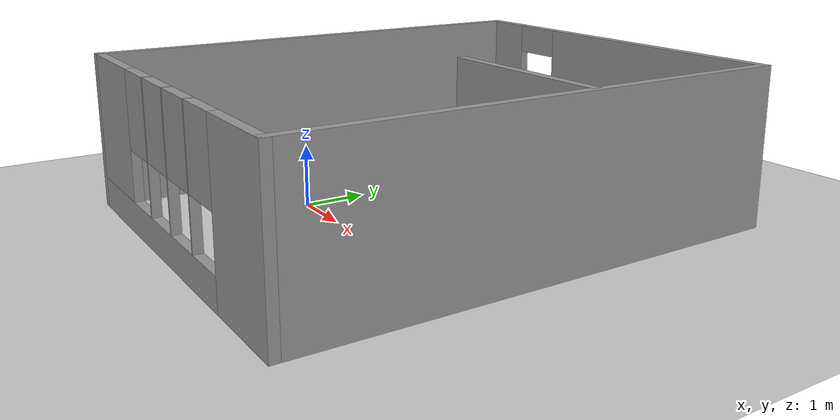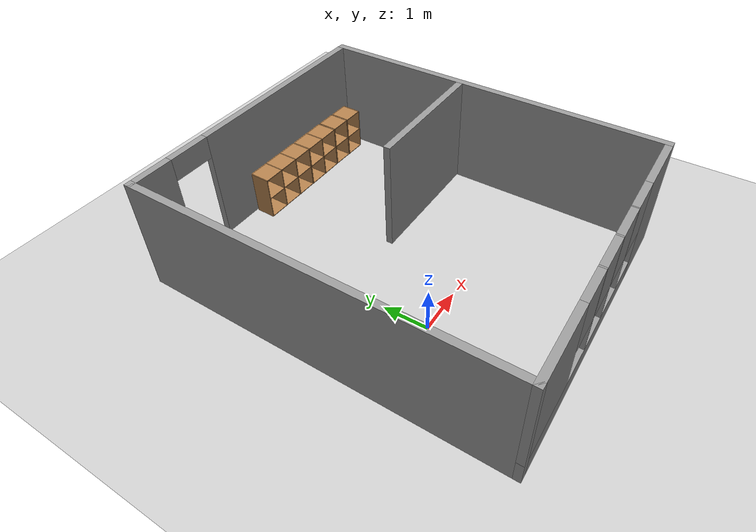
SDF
<sdf version="1.6">
 <world name="default">
  <light name="sun" type="directional">
   <pose>0 0 10 0 -0 0</pose>
   <diffuse>0.8 0.8 0.8 1</diffuse>
   <specular>0.2 0.2 0.2 1</specular>
   <attenuation>
    <range>1000</range>
    <constant>0.9</constant>
    <linear>0.01</linear>
    <quadratic>0.001</quadratic>
   </attenuation>
   <direction>-0.5 0.1 -0.9</direction>
  </light>
  <model name="ground_plane">
   <static>1</static>
   <link name="link">
    <collision name="collision">
     <geometry><plane><normal>0 0 1</normal><size>100 100</size></plane></geometry>
     <surface>
      <contact><collide_bitmask>65535</collide_bitmask></contact>
      <friction><ode><mu>100</mu><mu2>50</mu2></ode></friction>
     </surface>
    </collision>
    <visual name="visual">
     <cast_shadows>0</cast_shadows>
     <geometry><plane><normal>0 0 1</normal><size>100 100</size></plane></geometry>
     <material>
      <script><uri>file://media/materials/scripts/gazebo.material</uri><name>Gazebo/Grey</name></script>
     </material>
    </visual>
   </link>
  </model>
  <gravity>0 0 -9.8</gravity>
  <magnetic_field>6e-06 2.3e-05 -4.2e-05</magnetic_field>
  <atmosphere type="adiabatic"/>
  <physics name="default_physics" default="0" type="ode">
   <max_step_size>0.001</max_step_size>
   <real_time_factor>1</real_time_factor>
   <real_time_update_rate>1000</real_time_update_rate>
  </physics>
  <scene><ambient>0.4 0.4 0.4 1</ambient><background>0.7 0.7 0.7 1</background><shadows>1</shadows></scene>
  <audio><device>default</device></audio>
  <spherical_coordinates>
   <surface_model>EARTH_WGS84</surface_model>
   <latitude_deg>0</latitude_deg>
   <longitude_deg>0</longitude_deg>
   <elevation>0</elevation>
   <heading_deg>0</heading_deg>
  </spherical_coordinates>
  <model name="lab_simple">
   <pose>1.42168 1.25059 0 0 -0 0</pose>
   <link name="Wall_0">
    <pose>-0 -3.925 0 0 -0 3.14159</pose>
    <visual name="Wall_0_Visual_0">
     <pose>-2.5075 0 1.25 0 -0 0</pose>
     <geometry><box><size>1.485 0.15 2.5</size></box></geometry>
     <material>
      <script><uri>file://media/materials/scripts/gazebo.material</uri><name>Gazebo/Grey</name></script>
      <ambient>1 1 1 1</ambient>
     </material>
     <meta><layer>0</layer></meta>
    </visual>
    <collision name="Wall_0_Collision_0">
     <geometry><box><size>1.485 0.15 2.5</size></box></geometry>
     <pose>-2.5075 0 1.25 0 -0 0</pose>
    </collision>
    <visual name="Wall_0_Visual_1">
     <pose>0.7425 0 0.25 0 -0 0</pose>
     <geometry><box><size>5.015 0.15 0.5</size></box></geometry>
     <material>
      <script><uri>file://media/materials/scripts/gazebo.material</uri><name>Gazebo/Grey</name></script>
      <ambient>1 1 1 1</ambient>
     </material>
     <meta><layer>0</layer></meta>
    </visual>
    <collision name="Wall_0_Collision_1">
     <geometry><box><size>5.015 0.15 0.5</size></box></geometry>
     <pose>0.7425 0 0.25 0 -0 0</pose>
    </collision>
    <visual name="Wall_0_Visual_2">
     <pose>-0.95 0 1.5 0 -0 0</pose>
     <geometry><box><size>0.03 0.15 2</size></box></geometry>
     <material>
      <script><uri>file://media/materials/scripts/gazebo.material</uri><name>Gazebo/Grey</name></script>
      <ambient>1 1 1 1</ambient>
     </material>
     <meta><layer>0</layer></meta>
    </visual>
    <collision name="Wall_0_Collision_2">
     <geometry><box><size>0.03 0.15 2</size></box></geometry>
     <pose>-0.95 0 1.5 0 -0 0</pose>
    </collision>
    <visual name="Wall_0_Visual_3">
     <pose>-0.115 0 1.5 0 -0 0</pose>
     <geometry><box><size>0.04 0.15 2</size></box></geometry>
     <material>
      <script><uri>file://media/materials/scripts/gazebo.material</uri><name>Gazebo/Grey</name></script>
      <ambient>1 1 1 1</ambient>
     </material>
     <meta><layer>0</layer></meta>
    </visual>
    <collision name="Wall_0_Collision_3">
     <geometry><box><size>0.04 0.15 2</size></box></geometry>
     <pose>-0.115 0 1.5 0 -0 0</pose>
    </collision>
    <visual name="Wall_0_Visual_4">
     <pose>0.725 0 1.5 0 -0 0</pose>
     <geometry><box><size>0.04 0.15 2</size></box></geometry>
     <material>
      <script><uri>file://media/materials/scripts/gazebo.material</uri><name>Gazebo/Grey</name></script>
      <ambient>1 1 1 1</ambient>
     </material>
     <meta><layer>0</layer></meta>
    </visual>
    <collision name="Wall_0_Collision_4">
     <geometry><box><size>0.04 0.15 2</size></box></geometry>
     <pose>0.725 0 1.5 0 -0 0</pose>
    </collision>
    <visual name="Wall_0_Visual_5">
     <pose>2.3975 0 1.5 0 -0 0</pose>
     <geometry><box><size>1.705 0.15 2</size></box></geometry>
     <material>
      <script><uri>file://media/materials/scripts/gazebo.material</uri><name>Gazebo/Grey</name></script>
      <ambient>1 1 1 1</ambient>
     </material>
     <meta><layer>0</layer></meta>
    </visual>
    <collision name="Wall_0_Collision_5">
     <geometry><box><size>1.705 0.15 2</size></box></geometry>
     <pose>2.3975 0 1.5 0 -0 0</pose>
    </collision>
    <visual name="Wall_0_Visual_6">
     <pose>-1.365 0 1.9 0 -0 0</pose>
     <geometry><box><size>0.8 0.15 1.2</size></box></geometry>
     <material>
      <script><uri>file://media/materials/scripts/gazebo.material</uri><name>Gazebo/Grey</name></script>
      <ambient>1 1 1 1</ambient>
     </material>
     <meta><layer>0</layer></meta>
    </visual>
    <collision name="Wall_0_Collision_6">
     <geometry><box><size>0.8 0.15 1.2</size></box></geometry>
     <pose>-1.365 0 1.9 0 -0 0</pose>
    </collision>
    <visual name="Wall_0_Visual_7">
     <pose>-0.535 0 1.9 0 -0 0</pose>
     <geometry><box><size>0.8 0.15 1.2</size></box></geometry>
     <material>
      <script><uri>file://media/materials/scripts/gazebo.material</uri><name>Gazebo/Grey</name></script>
      <ambient>1 1 1 1</ambient>
     </material>
     <meta><layer>0</layer></meta>
    </visual>
    <collision name="Wall_0_Collision_7">
     <geometry><box><size>0.8 0.15 1.2</size></box></geometry>
     <pose>-0.535 0 1.9 0 -0 0</pose>
    </collision>
    <visual name="Wall_0_Visual_8">
     <pose>0.305 0 1.9 0 -0 0</pose>
     <geometry><box><size>0.8 0.15 1.2</size></box></geometry>
     <material>
      <script><uri>file://media/materials/scripts/gazebo.material</uri><name>Gazebo/Grey</name></script>
      <ambient>1 1 1 1</ambient>
     </material>
     <meta><layer>0</layer></meta>
    </visual>
    <collision name="Wall_0_Collision_8">
     <geometry><box><size>0.8 0.15 1.2</size></box></geometry>
     <pose>0.305 0 1.9 0 -0 0</pose>
    </collision>
    <visual name="Wall_0_Visual_9">
     <pose>1.145 0 1.9 0 -0 0</pose>
     <geometry><box><size>0.8 0.15 1.2</size></box></geometry>
     <material>
      <script><uri>file://media/materials/scripts/gazebo.material</uri><name>Gazebo/Grey</name></script>
      <ambient>1 1 1 1</ambient>
     </material>
     <meta><layer>0</layer></meta>
    </visual>
    <collision name="Wall_0_Collision_9">
     <geometry><box><size>0.8 0.15 1.2</size></box></geometry>
     <pose>1.145 0 1.9 0 -0 0</pose>
    </collision>
   </link>
   <link name="Wall_1">
    <collision name="Wall_1_Collision">
     <geometry><box><size>8 0.15 2.5</size></box></geometry>
     <pose>0 0 1.25 0 -0 0</pose>
    </collision>
    <visual name="Wall_1_Visual">
     <pose>0 0 1.25 0 -0 0</pose>
     <geometry><box><size>8 0.15 2.5</size></box></geometry>
     <material>
      <script><uri>file://media/materials/scripts/gazebo.material</uri><name>Gazebo/Grey</name></script>
      <ambient>1 1 1 1</ambient>
     </material>
     <meta><layer>0</layer></meta>
    </visual>
    <pose>-3.175 0 0 0 -0 1.5708</pose>
   </link>
   <link name="Wall_2">
    <pose>-0 3.925 0 0 -0 0</pose>
    <visual name="Wall_2_Visual_0">
     <pose>-2.7675 0 1.25 0 -0 0</pose>
     <geometry><box><size>0.965 0.15 2.5</size></box></geometry>
     <material>
      <script><uri>file://media/materials/scripts/gazebo.material</uri><name>Gazebo/Grey</name></script>
      <ambient>1 1 1 1</ambient>
     </material>
     <meta><layer>0</layer></meta>
    </visual>
    <collision name="Wall_2_Collision_0">
     <geometry><box><size>0.965 0.15 2.5</size></box></geometry>
     <pose>-2.7675 0 1.25 0 -0 0</pose>
    </collision>
    <visual name="Wall_2_Visual_1">
     <pose>0.9325 0 1.25 0 -0 0</pose>
     <geometry><box><size>4.635 0.15 2.5</size></box></geometry>
     <material>
      <script><uri>file://media/materials/scripts/gazebo.material</uri><name>Gazebo/Grey</name></script>
      <ambient>1 1 1 1</ambient>
     </material>
     <meta><layer>0</layer></meta>
    </visual>
    <collision name="Wall_2_Collision_1">
     <geometry><box><size>4.635 0.15 2.5</size></box></geometry>
     <pose>0.9325 0 1.25 0 -0 0</pose>
    </collision>
    <visual name="Wall_2_Visual_2">
     <pose>-1.835 0 2.25 0 -0 0</pose>
     <geometry><box><size>0.9 0.15 0.5</size></box></geometry>
     <material>
      <script><uri>file://media/materials/scripts/gazebo.material</uri><name>Gazebo/Grey</name></script>
      <ambient>1 1 1 1</ambient>
     </material>
     <meta><layer>0</layer></meta>
    </visual>
    <collision name="Wall_2_Collision_2">
     <geometry><box><size>0.9 0.15 0.5</size></box></geometry>
     <pose>-1.835 0 2.25 0 -0 0</pose>
    </collision>
   </link>
   <link name="Wall_3">
    <collision name="Wall_3_Collision">
     <geometry><box><size>8 0.15 2.5</size></box></geometry>
     <pose>0 0 1.25 0 -0 0</pose>
    </collision>
    <visual name="Wall_3_Visual">
     <pose>0 0 1.25 0 -0 0</pose>
     <geometry><box><size>8 0.15 2.5</size></box></geometry>
     <material>
      <script><uri>file://media/materials/scripts/gazebo.material</uri><name>Gazebo/Grey</name></script>
      <ambient>1 1 1 1</ambient>
     </material>
     <meta><layer>0</layer></meta>
    </visual>
    <pose>3.175 0 0 0 -0 -1.5708</pose>
   </link>
   <link name="Wall_5">
    <collision name="Wall_5_Collision">
     <geometry><box><size>3 0.15 2.5</size></box></geometry>
     <pose>0 0 1.25 0 -0 0</pose>
    </collision>
    <visual name="Wall_5_Visual">
     <pose>0 0 1.25 0 -0 0</pose>
     <geometry><box><size>3 0.15 2.5</size></box></geometry>
     <material>
      <script><uri>file://media/materials/scripts/gazebo.material</uri><name>Gazebo/Grey</name></script>
      <ambient>1 1 1 1</ambient>
     </material>
     <meta><layer>0</layer></meta>
    </visual>
    <pose>1.67 0.655 0 0 -0 0</pose>
   </link>
   <static>1</static>
  </model>
  <model name="cabinet">
   <static>1</static>
   <link name="cabinet_bottom_plate">
    <inertial>
     <pose>0 0 -1 0 -0 0</pose>
     <inertia><ixx>2.05</ixx><ixy>0</ixy><ixz>0</ixz><iyy>2.05</iyy><iyz>0</iyz><izz>2.05</izz></inertia>
     <mass>25</mass>
    </inertial>
    <collision name="cabinet_bottom_plate_geom">
     <pose>0 0 0.01 0 -0 0</pose>
     <geometry><box><size>0.45 0.45 0.02</size></box></geometry>
    </collision>
    <visual name="cabinet_bottom_plate_geom_visual">
     <pose>0 0 0.01 0 -0 0</pose>
     <geometry><box><size>0.45 0.45 0.02</size></box></geometry>
     <material>
      <script><uri>file://media/materials/scripts/gazebo.material</uri><name>Gazebo/Wood</name></script>
     </material>
    </visual>
    <collision name="cabinet_bottom_plate_geom_cabinet_back_plate">
     <pose>0.235 0 0.51 0 -0 0</pose>
     <geometry><box><size>0.02 0.45 1.02</size></box></geometry>
    </collision>
    <visual name="cabinet_bottom_plate_geom_cabinet_back_plate_visual">
     <pose>0.235 0 0.51 0 -0 0</pose>
     <geometry><box><size>0.02 0.45 1.02</size></box></geometry>
     <material>
      <script><uri>file://media/materials/scripts/gazebo.material</uri><name>Gazebo/Wood</name></script>
     </material>
    </visual>
    <collision name="cabinet_bottom_plate_geom_cabinet_left_plate">
     <pose>0 0.235 0.51 0 -0 0</pose>
     <geometry><box><size>0.45 0.02 1.02</size></box></geometry>
    </collision>
    <visual name="cabinet_bottom_plate_geom_cabinet_left_plate_visual">
     <pose>0 0.235 0.51 0 -0 0</pose>
     <geometry><box><size>0.45 0.02 1.02</size></box></geometry>
     <material>
      <script><uri>file://media/materials/scripts/gazebo.material</uri><name>Gazebo/Wood</name></script>
     </material>
    </visual>
    <collision name="cabinet_bottom_plate_geom_cabinet_middle_plate">
     <pose>0 0 0.51 0 -0 0</pose>
     <geometry><box><size>0.45 0.45 0.02</size></box></geometry>
    </collision>
    <visual name="cabinet_bottom_plate_geom_cabinet_middle_plate_visual">
     <pose>0 0 0.51 0 -0 0</pose>
     <geometry><box><size>0.45 0.45 0.02</size></box></geometry>
     <material>
      <script><uri>file://media/materials/scripts/gazebo.material</uri><name>Gazebo/Wood</name></script>
     </material>
    </visual>
    <collision name="cabinet_bottom_plate_geom_cabinet_right_plate">
     <pose>0 -0.235 0.51 0 -0 0</pose>
     <geometry><box><size>0.45 0.02 1.02</size></box></geometry>
    </collision>
    <visual name="cabinet_bottom_plate_geom_cabinet_right_plate_visual">
     <pose>0 -0.235 0.51 0 -0 0</pose>
     <geometry><box><size>0.45 0.02 1.02</size></box></geometry>
     <material>
      <script><uri>file://media/materials/scripts/gazebo.material</uri><name>Gazebo/Wood</name></script>
     </material>
    </visual>
    <collision name="cabinet_bottom_plate_geom_cabinet_top_plate">
     <pose>0 0 1.01 0 -0 0</pose>
     <geometry><box><size>0.45 0.45 0.02</size></box></geometry>
    </collision>
    <visual name="cabinet_bottom_plate_geom_cabinet_top_plate_visual">
     <pose>0 0 1.01 0 -0 0</pose>
     <geometry><box><size>0.45 0.45 0.02</size></box></geometry>
     <material>
      <script><uri>file://media/materials/scripts/gazebo.material</uri><name>Gazebo/Wood</name></script>
     </material>
    </visual>
   </link>
   <pose>1.16483 4.83629 0 0 -0 1.55424</pose>
  </model>
  <model name="cabinet_clone">
   <static>1</static>
   <link name="cabinet_bottom_plate">
    <inertial>
     <pose>0 0 -1 0 -0 0</pose>
     <inertia><ixx>2.05</ixx><ixy>0</ixy><ixz>0</ixz><iyy>2.05</iyy><iyz>0</iyz><izz>2.05</izz></inertia>
     <mass>25</mass>
    </inertial>
    <collision name="cabinet_bottom_plate_geom">
     <pose>0 0 0.01 0 -0 0</pose>
     <geometry><box><size>0.45 0.45 0.02</size></box></geometry>
    </collision>
    <visual name="cabinet_bottom_plate_geom_visual">
     <pose>0 0 0.01 0 -0 0</pose>
     <geometry><box><size>0.45 0.45 0.02</size></box></geometry>
     <material>
      <script><uri>file://media/materials/scripts/gazebo.material</uri><name>Gazebo/Wood</name></script>
     </material>
    </visual>
    <collision name="cabinet_bottom_plate_geom_cabinet_back_plate">
     <pose>0.235 0 0.51 0 -0 0</pose>
     <geometry><box><size>0.02 0.45 1.02</size></box></geometry>
    </collision>
    <visual name="cabinet_bottom_plate_geom_cabinet_back_plate_visual">
     <pose>0.235 0 0.51 0 -0 0</pose>
     <geometry><box><size>0.02 0.45 1.02</size></box></geometry>
     <material>
      <script><uri>file://media/materials/scripts/gazebo.material</uri><name>Gazebo/Wood</name></script>
     </material>
    </visual>
    <collision name="cabinet_bottom_plate_geom_cabinet_left_plate">
     <pose>0 0.235 0.51 0 -0 0</pose>
     <geometry><box><size>0.45 0.02 1.02</size></box></geometry>
    </collision>
    <visual name="cabinet_bottom_plate_geom_cabinet_left_plate_visual">
     <pose>0 0.235 0.51 0 -0 0</pose>
     <geometry><box><size>0.45 0.02 1.02</size></box></geometry>
     <material>
      <script><uri>file://media/materials/scripts/gazebo.material</uri><name>Gazebo/Wood</name></script>
     </material>
    </visual>
    <collision name="cabinet_bottom_plate_geom_cabinet_middle_plate">
     <pose>0 0 0.51 0 -0 0</pose>
     <geometry><box><size>0.45 0.45 0.02</size></box></geometry>
    </collision>
    <visual name="cabinet_bottom_plate_geom_cabinet_middle_plate_visual">
     <pose>0 0 0.51 0 -0 0</pose>
     <geometry><box><size>0.45 0.45 0.02</size></box></geometry>
     <material>
      <script><uri>file://media/materials/scripts/gazebo.material</uri><name>Gazebo/Wood</name></script>
     </material>
    </visual>
    <collision name="cabinet_bottom_plate_geom_cabinet_right_plate">
     <pose>0 -0.235 0.51 0 -0 0</pose>
     <geometry><box><size>0.45 0.02 1.02</size></box></geometry>
    </collision>
    <visual name="cabinet_bottom_plate_geom_cabinet_right_plate_visual">
     <pose>0 -0.235 0.51 0 -0 0</pose>
     <geometry><box><size>0.45 0.02 1.02</size></box></geometry>
     <material>
      <script><uri>file://media/materials/scripts/gazebo.material</uri><name>Gazebo/Wood</name></script>
     </material>
    </visual>
    <collision name="cabinet_bottom_plate_geom_cabinet_top_plate">
     <pose>0 0 1.01 0 -0 0</pose>
     <geometry><box><size>0.45 0.45 0.02</size></box></geometry>
    </collision>
    <visual name="cabinet_bottom_plate_geom_cabinet_top_plate_visual">
     <pose>0 0 1.01 0 -0 0</pose>
     <geometry><box><size>0.45 0.45 0.02</size></box></geometry>
     <material>
      <script><uri>file://media/materials/scripts/gazebo.material</uri><name>Gazebo/Wood</name></script>
     </material>
    </visual>
   </link>
   <pose>1.63678 4.83291 0 0 -0 1.55919</pose>
  </model>
  <model name="cabinet_clone_0">
   <static>1</static>
   <link name="cabinet_bottom_plate">
    <inertial>
     <pose>0 0 -1 0 -0 0</pose>
     <inertia><ixx>2.05</ixx><ixy>0</ixy><ixz>0</ixz><iyy>2.05</iyy><iyz>0</iyz><izz>2.05</izz></inertia>
     <mass>25</mass>
    </inertial>
    <collision name="cabinet_bottom_plate_geom">
     <pose>0 0 0.01 0 -0 0</pose>
     <geometry><box><size>0.45 0.45 0.02</size></box></geometry>
    </collision>
    <visual name="cabinet_bottom_plate_geom_visual">
     <pose>0 0 0.01 0 -0 0</pose>
     <geometry><box><size>0.45 0.45 0.02</size></box></geometry>
     <material>
      <script><uri>file://media/materials/scripts/gazebo.material</uri><name>Gazebo/Wood</name></script>
     </material>
    </visual>
    <collision name="cabinet_bottom_plate_geom_cabinet_back_plate">
     <pose>0.235 0 0.51 0 -0 0</pose>
     <geometry><box><size>0.02 0.45 1.02</size></box></geometry>
    </collision>
    <visual name="cabinet_bottom_plate_geom_cabinet_back_plate_visual">
     <pose>0.235 0 0.51 0 -0 0</pose>
     <geometry><box><size>0.02 0.45 1.02</size></box></geometry>
     <material>
      <script><uri>file://media/materials/scripts/gazebo.material</uri><name>Gazebo/Wood</name></script>
     </material>
    </visual>
    <collision name="cabinet_bottom_plate_geom_cabinet_left_plate">
     <pose>0 0.235 0.51 0 -0 0</pose>
     <geometry><box><size>0.45 0.02 1.02</size></box></geometry>
    </collision>
    <visual name="cabinet_bottom_plate_geom_cabinet_left_plate_visual">
     <pose>0 0.235 0.51 0 -0 0</pose>
     <geometry><box><size>0.45 0.02 1.02</size></box></geometry>
     <material>
      <script><uri>file://media/materials/scripts/gazebo.material</uri><name>Gazebo/Wood</name></script>
     </material>
    </visual>
    <collision name="cabinet_bottom_plate_geom_cabinet_middle_plate">
     <pose>0 0 0.51 0 -0 0</pose>
     <geometry><box><size>0.45 0.45 0.02</size></box></geometry>
    </collision>
    <visual name="cabinet_bottom_plate_geom_cabinet_middle_plate_visual">
     <pose>0 0 0.51 0 -0 0</pose>
     <geometry><box><size>0.45 0.45 0.02</size></box></geometry>
     <material>
      <script><uri>file://media/materials/scripts/gazebo.material</uri><name>Gazebo/Wood</name></script>
     </material>
    </visual>
    <collision name="cabinet_bottom_plate_geom_cabinet_right_plate">
     <pose>0 -0.235 0.51 0 -0 0</pose>
     <geometry><box><size>0.45 0.02 1.02</size></box></geometry>
    </collision>
    <visual name="cabinet_bottom_plate_geom_cabinet_right_plate_visual">
     <pose>0 -0.235 0.51 0 -0 0</pose>
     <geometry><box><size>0.45 0.02 1.02</size></box></geometry>
     <material>
      <script><uri>file://media/materials/scripts/gazebo.material</uri><name>Gazebo/Wood</name></script>
     </material>
    </visual>
    <collision name="cabinet_bottom_plate_geom_cabinet_top_plate">
     <pose>0 0 1.01 0 -0 0</pose>
     <geometry><box><size>0.45 0.45 0.02</size></box></geometry>
    </collision>
    <visual name="cabinet_bottom_plate_geom_cabinet_top_plate_visual">
     <pose>0 0 1.01 0 -0 0</pose>
     <geometry><box><size>0.45 0.45 0.02</size></box></geometry>
     <material>
      <script><uri>file://media/materials/scripts/gazebo.material</uri><name>Gazebo/Wood</name></script>
     </material>
    </visual>
   </link>
   <pose>2.11128 4.82799 0 0 -0 1.57024</pose>
  </model>
  <model name="cabinet_clone_1">
   <static>1</static>
   <link name="cabinet_bottom_plate">
    <inertial>
     <pose>0 0 -1 0 -0 0</pose>
     <inertia><ixx>2.05</ixx><ixy>0</ixy><ixz>0</ixz><iyy>2.05</iyy><iyz>0</iyz><izz>2.05</izz></inertia>
     <mass>25</mass>
    </inertial>
    <collision name="cabinet_bottom_plate_geom">
     <pose>0 0 0.01 0 -0 0</pose>
     <geometry><box><size>0.45 0.45 0.02</size></box></geometry>
    </collision>
    <visual name="cabinet_bottom_plate_geom_visual">
     <pose>0 0 0.01 0 -0 0</pose>
     <geometry><box><size>0.45 0.45 0.02</size></box></geometry>
     <material>
      <script><uri>file://media/materials/scripts/gazebo.material</uri><name>Gazebo/Wood</name></script>
     </material>
    </visual>
    <collision name="cabinet_bottom_plate_geom_cabinet_back_plate">
     <pose>0.235 0 0.51 0 -0 0</pose>
     <geometry><box><size>0.02 0.45 1.02</size></box></geometry>
    </collision>
    <visual name="cabinet_bottom_plate_geom_cabinet_back_plate_visual">
     <pose>0.235 0 0.51 0 -0 0</pose>
     <geometry><box><size>0.02 0.45 1.02</size></box></geometry>
     <material>
      <script><uri>file://media/materials/scripts/gazebo.material</uri><name>Gazebo/Wood</name></script>
     </material>
    </visual>
    <collision name="cabinet_bottom_plate_geom_cabinet_left_plate">
     <pose>0 0.235 0.51 0 -0 0</pose>
     <geometry><box><size>0.45 0.02 1.02</size></box></geometry>
    </collision>
    <visual name="cabinet_bottom_plate_geom_cabinet_left_plate_visual">
     <pose>0 0.235 0.51 0 -0 0</pose>
     <geometry><box><size>0.45 0.02 1.02</size></box></geometry>
     <material>
      <script><uri>file://media/materials/scripts/gazebo.material</uri><name>Gazebo/Wood</name></script>
     </material>
    </visual>
    <collision name="cabinet_bottom_plate_geom_cabinet_middle_plate">
     <pose>0 0 0.51 0 -0 0</pose>
     <geometry><box><size>0.45 0.45 0.02</size></box></geometry>
    </collision>
    <visual name="cabinet_bottom_plate_geom_cabinet_middle_plate_visual">
     <pose>0 0 0.51 0 -0 0</pose>
     <geometry><box><size>0.45 0.45 0.02</size></box></geometry>
     <material>
      <script><uri>file://media/materials/scripts/gazebo.material</uri><name>Gazebo/Wood</name></script>
     </material>
    </visual>
    <collision name="cabinet_bottom_plate_geom_cabinet_right_plate">
     <pose>0 -0.235 0.51 0 -0 0</pose>
     <geometry><box><size>0.45 0.02 1.02</size></box></geometry>
    </collision>
    <visual name="cabinet_bottom_plate_geom_cabinet_right_plate_visual">
     <pose>0 -0.235 0.51 0 -0 0</pose>
     <geometry><box><size>0.45 0.02 1.02</size></box></geometry>
     <material>
      <script><uri>file://media/materials/scripts/gazebo.material</uri><name>Gazebo/Wood</name></script>
     </material>
    </visual>
    <collision name="cabinet_bottom_plate_geom_cabinet_top_plate">
     <pose>0 0 1.01 0 -0 0</pose>
     <geometry><box><size>0.45 0.45 0.02</size></box></geometry>
    </collision>
    <visual name="cabinet_bottom_plate_geom_cabinet_top_plate_visual">
     <pose>0 0 1.01 0 -0 0</pose>
     <geometry><box><size>0.45 0.45 0.02</size></box></geometry>
     <material>
      <script><uri>file://media/materials/scripts/gazebo.material</uri><name>Gazebo/Wood</name></script>
     </material>
    </visual>
   </link>
   <pose>2.59531 4.82299 0 0 -0 1.5717</pose>
  </model>
  <model name="cabinet_clone_2">
   <static>1</static>
   <link name="cabinet_bottom_plate">
    <inertial>
     <pose>0 0 -1 0 -0 0</pose>
     <inertia><ixx>2.05</ixx><ixy>0</ixy><ixz>0</ixz><iyy>2.05</iyy><iyz>0</iyz><izz>2.05</izz></inertia>
     <mass>25</mass>
    </inertial>
    <collision name="cabinet_bottom_plate_geom">
     <pose>0 0 0.01 0 -0 0</pose>
     <geometry><box><size>0.45 0.45 0.02</size></box></geometry>
    </collision>
    <visual name="cabinet_bottom_plate_geom_visual">
     <pose>0 0 0.01 0 -0 0</pose>
     <geometry><box><size>0.45 0.45 0.02</size></box></geometry>
     <material>
      <script><uri>file://media/materials/scripts/gazebo.material</uri><name>Gazebo/Wood</name></script>
     </material>
    </visual>
    <collision name="cabinet_bottom_plate_geom_cabinet_back_plate">
     <pose>0.235 0 0.51 0 -0 0</pose>
     <geometry><box><size>0.02 0.45 1.02</size></box></geometry>
    </collision>
    <visual name="cabinet_bottom_plate_geom_cabinet_back_plate_visual">
     <pose>0.235 0 0.51 0 -0 0</pose>
     <geometry><box><size>0.02 0.45 1.02</size></box></geometry>
     <material>
      <script><uri>file://media/materials/scripts/gazebo.material</uri><name>Gazebo/Wood</name></script>
     </material>
    </visual>
    <collision name="cabinet_bottom_plate_geom_cabinet_left_plate">
     <pose>0 0.235 0.51 0 -0 0</pose>
     <geometry><box><size>0.45 0.02 1.02</size></box></geometry>
    </collision>
    <visual name="cabinet_bottom_plate_geom_cabinet_left_plate_visual">
     <pose>0 0.235 0.51 0 -0 0</pose>
     <geometry><box><size>0.45 0.02 1.02</size></box></geometry>
     <material>
      <script><uri>file://media/materials/scripts/gazebo.material</uri><name>Gazebo/Wood</name></script>
     </material>
    </visual>
    <collision name="cabinet_bottom_plate_geom_cabinet_middle_plate">
     <pose>0 0 0.51 0 -0 0</pose>
     <geometry><box><size>0.45 0.45 0.02</size></box></geometry>
    </collision>
    <visual name="cabinet_bottom_plate_geom_cabinet_middle_plate_visual">
     <pose>0 0 0.51 0 -0 0</pose>
     <geometry><box><size>0.45 0.45 0.02</size></box></geometry>
     <material>
      <script><uri>file://media/materials/scripts/gazebo.material</uri><name>Gazebo/Wood</name></script>
     </material>
    </visual>
    <collision name="cabinet_bottom_plate_geom_cabinet_right_plate">
     <pose>0 -0.235 0.51 0 -0 0</pose>
     <geometry><box><size>0.45 0.02 1.02</size></box></geometry>
    </collision>
    <visual name="cabinet_bottom_plate_geom_cabinet_right_plate_visual">
     <pose>0 -0.235 0.51 0 -0 0</pose>
     <geometry><box><size>0.45 0.02 1.02</size></box></geometry>
     <material>
      <script><uri>file://media/materials/scripts/gazebo.material</uri><name>Gazebo/Wood</name></script>
     </material>
    </visual>
    <collision name="cabinet_bottom_plate_geom_cabinet_top_plate">
     <pose>0 0 1.01 0 -0 0</pose>
     <geometry><box><size>0.45 0.45 0.02</size></box></geometry>
    </collision>
    <visual name="cabinet_bottom_plate_geom_cabinet_top_plate_visual">
     <pose>0 0 1.01 0 -0 0</pose>
     <geometry><box><size>0.45 0.45 0.02</size></box></geometry>
     <material>
      <script><uri>file://media/materials/scripts/gazebo.material</uri><name>Gazebo/Wood</name></script>
     </material>
    </visual>
   </link>
   <pose>3.06882 4.82094 0 0 -0 1.57737</pose>
  </model>
  <model name="cabinet_clone_3">
   <static>1</static>
   <link name="cabinet_bottom_plate">
    <inertial>
     <pose>0 0 -1 0 -0 0</pose>
     <inertia><ixx>2.05</ixx><ixy>0</ixy><ixz>0</ixz><iyy>2.05</iyy><iyz>0</iyz><izz>2.05</izz></inertia>
     <mass>25</mass>
    </inertial>
    <collision name="cabinet_bottom_plate_geom">
     <pose>0 0 0.01 0 -0 0</pose>
     <geometry><box><size>0.45 0.45 0.02</size></box></geometry>
    </collision>
    <visual name="cabinet_bottom_plate_geom_visual">
     <pose>0 0 0.01 0 -0 0</pose>
     <geometry><box><size>0.45 0.45 0.02</size></box></geometry>
     <material>
      <script><uri>file://media/materials/scripts/gazebo.material</uri><name>Gazebo/Wood</name></script>
     </material>
    </visual>
    <collision name="cabinet_bottom_plate_geom_cabinet_back_plate">
     <pose>0.235 0 0.51 0 -0 0</pose>
     <geometry><box><size>0.02 0.45 1.02</size></box></geometry>
    </collision>
    <visual name="cabinet_bottom_plate_geom_cabinet_back_plate_visual">
     <pose>0.235 0 0.51 0 -0 0</pose>
     <geometry><box><size>0.02 0.45 1.02</size></box></geometry>
     <material>
      <script><uri>file://media/materials/scripts/gazebo.material</uri><name>Gazebo/Wood</name></script>
     </material>
    </visual>
    <collision name="cabinet_bottom_plate_geom_cabinet_left_plate">
     <pose>0 0.235 0.51 0 -0 0</pose>
     <geometry><box><size>0.45 0.02 1.02</size></box></geometry>
    </collision>
    <visual name="cabinet_bottom_plate_geom_cabinet_left_plate_visual">
     <pose>0 0.235 0.51 0 -0 0</pose>
     <geometry><box><size>0.45 0.02 1.02</size></box></geometry>
     <material>
      <script><uri>file://media/materials/scripts/gazebo.material</uri><name>Gazebo/Wood</name></script>
     </material>
    </visual>
    <collision name="cabinet_bottom_plate_geom_cabinet_middle_plate">
     <pose>0 0 0.51 0 -0 0</pose>
     <geometry><box><size>0.45 0.45 0.02</size></box></geometry>
    </collision>
    <visual name="cabinet_bottom_plate_geom_cabinet_middle_plate_visual">
     <pose>0 0 0.51 0 -0 0</pose>
     <geometry><box><size>0.45 0.45 0.02</size></box></geometry>
     <material>
      <script><uri>file://media/materials/scripts/gazebo.material</uri><name>Gazebo/Wood</name></script>
     </material>
    </visual>
    <collision name="cabinet_bottom_plate_geom_cabinet_right_plate">
     <pose>0 -0.235 0.51 0 -0 0</pose>
     <geometry><box><size>0.45 0.02 1.02</size></box></geometry>
    </collision>
    <visual name="cabinet_bottom_plate_geom_cabinet_right_plate_visual">
     <pose>0 -0.235 0.51 0 -0 0</pose>
     <geometry><box><size>0.45 0.02 1.02</size></box></geometry>
     <material>
      <script><uri>file://media/materials/scripts/gazebo.material</uri><name>Gazebo/Wood</name></script>
     </material>
    </visual>
    <collision name="cabinet_bottom_plate_geom_cabinet_top_plate">
     <pose>0 0 1.01 0 -0 0</pose>
     <geometry><box><size>0.45 0.45 0.02</size></box></geometry>
    </collision>
    <visual name="cabinet_bottom_plate_geom_cabinet_top_plate_visual">
     <pose>0 0 1.01 0 -0 0</pose>
     <geometry><box><size>0.45 0.45 0.02</size></box></geometry>
     <material>
      <script><uri>file://media/materials/scripts/gazebo.material</uri><name>Gazebo/Wood</name></script>
     </material>
    </visual>
   </link>
   <pose>3.56676 4.81783 0 0 -0 1.55424</pose>
  </model>
  <model name="cabinet_clone_4">
   <static>1</static>
   <link name="cabinet_bottom_plate">
    <inertial>
     <pose>0 0 -1 0 -0 0</pose>
     <inertia><ixx>2.05</ixx><ixy>0</ixy><ixz>0</ixz><iyy>2.05</iyy><iyz>0</iyz><izz>2.05</izz></inertia>
     <mass>25</mass>
    </inertial>
    <collision name="cabinet_bottom_plate_geom">
     <pose>0 0 0.01 0 -0 0</pose>
     <geometry><box><size>0.45 0.45 0.02</size></box></geometry>
    </collision>
    <visual name="cabinet_bottom_plate_geom_visual">
     <pose>0 0 0.01 0 -0 0</pose>
     <geometry><box><size>0.45 0.45 0.02</size></box></geometry>
     <material>
      <script><uri>file://media/materials/scripts/gazebo.material</uri><name>Gazebo/Wood</name></script>
     </material>
    </visual>
    <collision name="cabinet_bottom_plate_geom_cabinet_back_plate">
     <pose>0.235 0 0.51 0 -0 0</pose>
     <geometry><box><size>0.02 0.45 1.02</size></box></geometry>
    </collision>
    <visual name="cabinet_bottom_plate_geom_cabinet_back_plate_visual">
     <pose>0.235 0 0.51 0 -0 0</pose>
     <geometry><box><size>0.02 0.45 1.02</size></box></geometry>
     <material>
      <script><uri>file://media/materials/scripts/gazebo.material</uri><name>Gazebo/Wood</name></script>
     </material>
    </visual>
    <collision name="cabinet_bottom_plate_geom_cabinet_left_plate">
     <pose>0 0.235 0.51 0 -0 0</pose>
     <geometry><box><size>0.45 0.02 1.02</size></box></geometry>
    </collision>
    <visual name="cabinet_bottom_plate_geom_cabinet_left_plate_visual">
     <pose>0 0.235 0.51 0 -0 0</pose>
     <geometry><box><size>0.45 0.02 1.02</size></box></geometry>
     <material>
      <script><uri>file://media/materials/scripts/gazebo.material</uri><name>Gazebo/Wood</name></script>
     </material>
    </visual>
    <collision name="cabinet_bottom_plate_geom_cabinet_middle_plate">
     <pose>0 0 0.51 0 -0 0</pose>
     <geometry><box><size>0.45 0.45 0.02</size></box></geometry>
    </collision>
    <visual name="cabinet_bottom_plate_geom_cabinet_middle_plate_visual">
     <pose>0 0 0.51 0 -0 0</pose>
     <geometry><box><size>0.45 0.45 0.02</size></box></geometry>
     <material>
      <script><uri>file://media/materials/scripts/gazebo.material</uri><name>Gazebo/Wood</name></script>
     </material>
    </visual>
    <collision name="cabinet_bottom_plate_geom_cabinet_right_plate">
     <pose>0 -0.235 0.51 0 -0 0</pose>
     <geometry><box><size>0.45 0.02 1.02</size></box></geometry>
    </collision>
    <visual name="cabinet_bottom_plate_geom_cabinet_right_plate_visual">
     <pose>0 -0.235 0.51 0 -0 0</pose>
     <geometry><box><size>0.45 0.02 1.02</size></box></geometry>
     <material>
      <script><uri>file://media/materials/scripts/gazebo.material</uri><name>Gazebo/Wood</name></script>
     </material>
    </visual>
    <collision name="cabinet_bottom_plate_geom_cabinet_top_plate">
     <pose>0 0 1.01 0 -0 0</pose>
     <geometry><box><size>0.45 0.45 0.02</size></box></geometry>
    </collision>
    <visual name="cabinet_bottom_plate_geom_cabinet_top_plate_visual">
     <pose>0 0 1.01 0 -0 0</pose>
     <geometry><box><size>0.45 0.45 0.02</size></box></geometry>
     <material>
      <script><uri>file://media/materials/scripts/gazebo.material</uri><name>Gazebo/Wood</name></script>
     </material>
    </visual>
   </link>
   <pose>4.06074 4.80702 0 0 -0 1.55424</pose>
  </model>
 </world>
</sdf>
